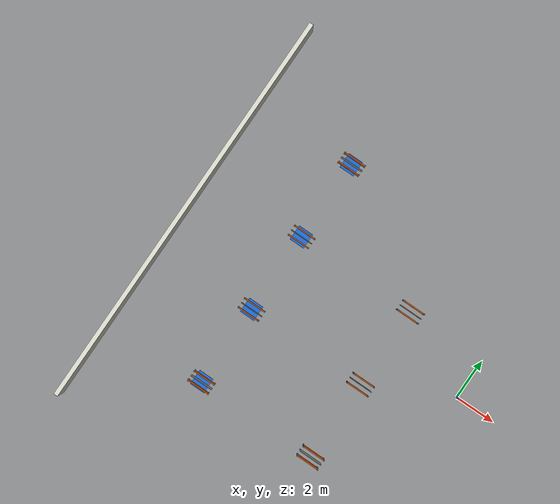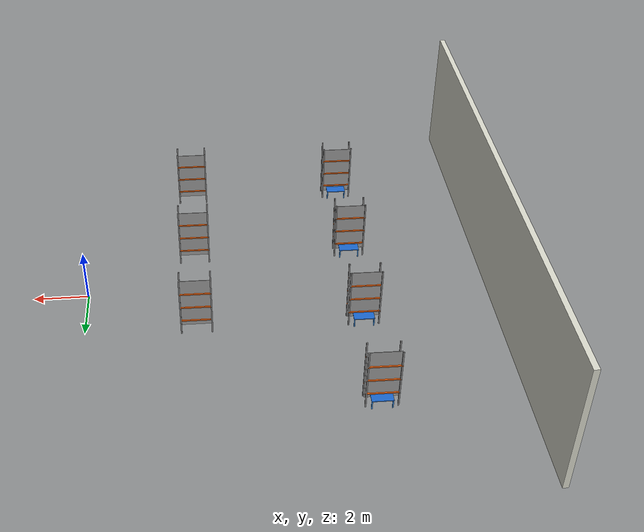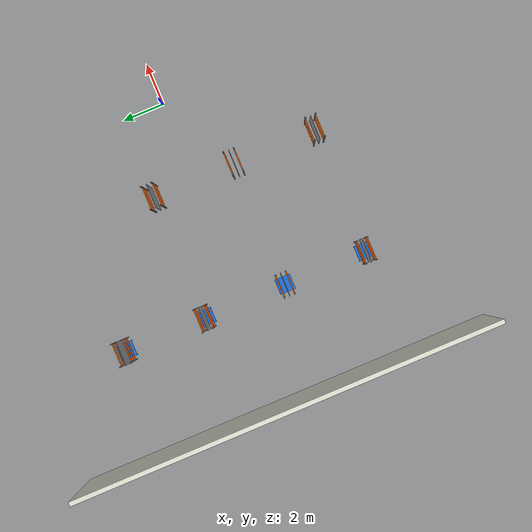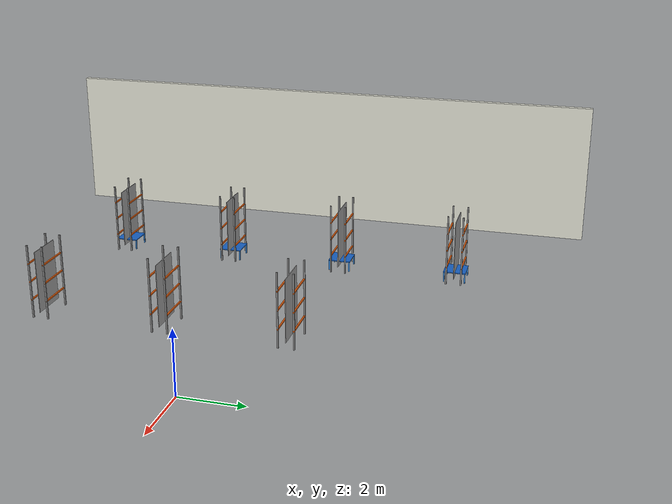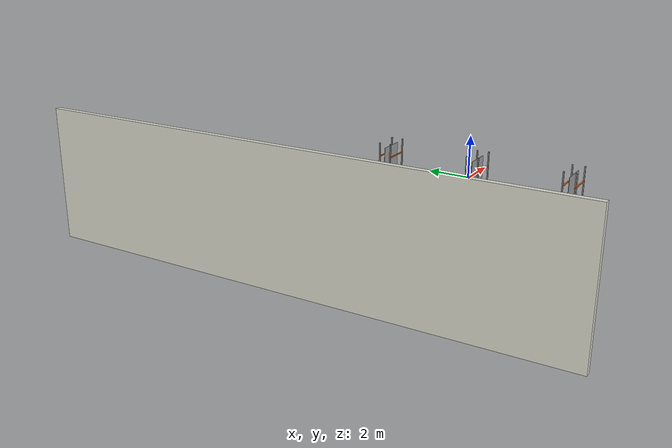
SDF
<sdf version="1.8">
 <world name="amr_world">
  <model name="wall_west">
   <static>true</static>
   <pose>-15 0 2.5 0 0 0</pose>
   <link name="link">
    <collision name="col"><geometry><box><size>0.2 20 5</size></box></geometry></collision>
    <visual name="vis">
     <geometry><box><size>0.2 20 5</size></box></geometry>
     <material><ambient>0.85 0.85 0.80 1</ambient><diffuse>0.85 0.85 0.80 1</diffuse></material>
    </visual>
   </link>
  </model>
  <model name="rack_1_1">
   <static>true</static>
   <pose>-10 -6 0 0 0 0</pose>
   <link name="link">
    <visual name="p1">
     <pose>0.55 0.25 1.2 0 0 0</pose>
     <geometry><box><size>0.05 0.05 2.4</size></box></geometry>
     <material><ambient>0.4 0.4 0.4 1</ambient><diffuse>0.5 0.5 0.5 1</diffuse></material>
    </visual>
    <collision name="p1c">
     <pose>0.55 0.25 1.2 0 0 0</pose>
     <geometry><box><size>0.05 0.05 2.4</size></box></geometry>
    </collision>
    <visual name="p2">
     <pose>0.55 -0.25 1.2 0 0 0</pose>
     <geometry><box><size>0.05 0.05 2.4</size></box></geometry>
     <material><ambient>0.4 0.4 0.4 1</ambient><diffuse>0.5 0.5 0.5 1</diffuse></material>
    </visual>
    <collision name="p2c">
     <pose>0.55 -0.25 1.2 0 0 0</pose>
     <geometry><box><size>0.05 0.05 2.4</size></box></geometry>
    </collision>
    <visual name="p3">
     <pose>-0.55 0.25 1.2 0 0 0</pose>
     <geometry><box><size>0.05 0.05 2.4</size></box></geometry>
     <material><ambient>0.4 0.4 0.4 1</ambient><diffuse>0.5 0.5 0.5 1</diffuse></material>
    </visual>
    <collision name="p3c">
     <pose>-0.55 0.25 1.2 0 0 0</pose>
     <geometry><box><size>0.05 0.05 2.4</size></box></geometry>
    </collision>
    <visual name="p4">
     <pose>-0.55 -0.25 1.2 0 0 0</pose>
     <geometry><box><size>0.05 0.05 2.4</size></box></geometry>
     <material><ambient>0.4 0.4 0.4 1</ambient><diffuse>0.5 0.5 0.5 1</diffuse></material>
    </visual>
    <collision name="p4c">
     <pose>-0.55 -0.25 1.2 0 0 0</pose>
     <geometry><box><size>0.05 0.05 2.4</size></box></geometry>
    </collision>
    <visual name="b1l">
     <pose>0 0.25 0.60 0 0 0</pose>
     <geometry><box><size>1.15 0.05 0.04</size></box></geometry>
     <material><ambient>0.85 0.35 0.05 1</ambient><diffuse>0.85 0.35 0.05 1</diffuse></material>
    </visual>
    <collision name="b1lc">
     <pose>0 0.25 0.60 0 0 0</pose>
     <geometry><box><size>1.15 0.05 0.04</size></box></geometry>
    </collision>
    <visual name="b1r">
     <pose>0 -0.25 0.60 0 0 0</pose>
     <geometry><box><size>1.15 0.05 0.04</size></box></geometry>
     <material><ambient>0.85 0.35 0.05 1</ambient><diffuse>0.85 0.35 0.05 1</diffuse></material>
    </visual>
    <collision name="b1rc">
     <pose>0 -0.25 0.60 0 0 0</pose>
     <geometry><box><size>1.15 0.05 0.04</size></box></geometry>
    </collision>
    <visual name="b2l">
     <pose>0 0.25 1.20 0 0 0</pose>
     <geometry><box><size>1.15 0.05 0.04</size></box></geometry>
     <material><ambient>0.85 0.35 0.05 1</ambient><diffuse>0.85 0.35 0.05 1</diffuse></material>
    </visual>
    <collision name="b2lc">
     <pose>0 0.25 1.20 0 0 0</pose>
     <geometry><box><size>1.15 0.05 0.04</size></box></geometry>
    </collision>
    <visual name="b2r">
     <pose>0 -0.25 1.20 0 0 0</pose>
     <geometry><box><size>1.15 0.05 0.04</size></box></geometry>
     <material><ambient>0.85 0.35 0.05 1</ambient><diffuse>0.85 0.35 0.05 1</diffuse></material>
    </visual>
    <collision name="b2rc">
     <pose>0 -0.25 1.20 0 0 0</pose>
     <geometry><box><size>1.15 0.05 0.04</size></box></geometry>
    </collision>
    <visual name="b3l">
     <pose>0 0.25 1.80 0 0 0</pose>
     <geometry><box><size>1.15 0.05 0.04</size></box></geometry>
     <material><ambient>0.85 0.35 0.05 1</ambient><diffuse>0.85 0.35 0.05 1</diffuse></material>
    </visual>
    <collision name="b3lc">
     <pose>0 0.25 1.80 0 0 0</pose>
     <geometry><box><size>1.15 0.05 0.04</size></box></geometry>
    </collision>
    <visual name="b3r">
     <pose>0 -0.25 1.80 0 0 0</pose>
     <geometry><box><size>1.15 0.05 0.04</size></box></geometry>
     <material><ambient>0.85 0.35 0.05 1</ambient><diffuse>0.85 0.35 0.05 1</diffuse></material>
    </visual>
    <collision name="b3rc">
     <pose>0 -0.25 1.80 0 0 0</pose>
     <geometry><box><size>1.15 0.05 0.04</size></box></geometry>
    </collision>
    <visual name="brace">
     <pose>0 0 1.2 0 0 0</pose>
     <geometry><box><size>1.15 0.02 2.0</size></box></geometry>
     <material><ambient>0.6 0.6 0.6 1</ambient><diffuse>0.6 0.6 0.6 1</diffuse></material>
    </visual>
   </link>
  </model>
  <model name="rack_1_2">
   <static>true</static>
   <pose>-10 -2 0 0 0 0</pose>
   <link name="link">
    <visual name="p1">
     <pose>0.55 0.25 1.2 0 0 0</pose>
     <geometry><box><size>0.05 0.05 2.4</size></box></geometry>
     <material><ambient>0.4 0.4 0.4 1</ambient><diffuse>0.5 0.5 0.5 1</diffuse></material>
    </visual>
    <collision name="p1c">
     <pose>0.55 0.25 1.2 0 0 0</pose>
     <geometry><box><size>0.05 0.05 2.4</size></box></geometry>
    </collision>
    <visual name="p2">
     <pose>0.55 -0.25 1.2 0 0 0</pose>
     <geometry><box><size>0.05 0.05 2.4</size></box></geometry>
     <material><ambient>0.4 0.4 0.4 1</ambient><diffuse>0.5 0.5 0.5 1</diffuse></material>
    </visual>
    <collision name="p2c">
     <pose>0.55 -0.25 1.2 0 0 0</pose>
     <geometry><box><size>0.05 0.05 2.4</size></box></geometry>
    </collision>
    <visual name="p3">
     <pose>-0.55 0.25 1.2 0 0 0</pose>
     <geometry><box><size>0.05 0.05 2.4</size></box></geometry>
     <material><ambient>0.4 0.4 0.4 1</ambient><diffuse>0.5 0.5 0.5 1</diffuse></material>
    </visual>
    <collision name="p3c">
     <pose>-0.55 0.25 1.2 0 0 0</pose>
     <geometry><box><size>0.05 0.05 2.4</size></box></geometry>
    </collision>
    <visual name="p4">
     <pose>-0.55 -0.25 1.2 0 0 0</pose>
     <geometry><box><size>0.05 0.05 2.4</size></box></geometry>
     <material><ambient>0.4 0.4 0.4 1</ambient><diffuse>0.5 0.5 0.5 1</diffuse></material>
    </visual>
    <collision name="p4c">
     <pose>-0.55 -0.25 1.2 0 0 0</pose>
     <geometry><box><size>0.05 0.05 2.4</size></box></geometry>
    </collision>
    <visual name="b1l">
     <pose>0 0.25 0.60 0 0 0</pose>
     <geometry><box><size>1.15 0.05 0.04</size></box></geometry>
     <material><ambient>0.85 0.35 0.05 1</ambient><diffuse>0.85 0.35 0.05 1</diffuse></material>
    </visual>
    <collision name="b1lc">
     <pose>0 0.25 0.60 0 0 0</pose>
     <geometry><box><size>1.15 0.05 0.04</size></box></geometry>
    </collision>
    <visual name="b1r">
     <pose>0 -0.25 0.60 0 0 0</pose>
     <geometry><box><size>1.15 0.05 0.04</size></box></geometry>
     <material><ambient>0.85 0.35 0.05 1</ambient><diffuse>0.85 0.35 0.05 1</diffuse></material>
    </visual>
    <collision name="b1rc">
     <pose>0 -0.25 0.60 0 0 0</pose>
     <geometry><box><size>1.15 0.05 0.04</size></box></geometry>
    </collision>
    <visual name="b2l">
     <pose>0 0.25 1.20 0 0 0</pose>
     <geometry><box><size>1.15 0.05 0.04</size></box></geometry>
     <material><ambient>0.85 0.35 0.05 1</ambient><diffuse>0.85 0.35 0.05 1</diffuse></material>
    </visual>
    <collision name="b2lc">
     <pose>0 0.25 1.20 0 0 0</pose>
     <geometry><box><size>1.15 0.05 0.04</size></box></geometry>
    </collision>
    <visual name="b2r">
     <pose>0 -0.25 1.20 0 0 0</pose>
     <geometry><box><size>1.15 0.05 0.04</size></box></geometry>
     <material><ambient>0.85 0.35 0.05 1</ambient><diffuse>0.85 0.35 0.05 1</diffuse></material>
    </visual>
    <collision name="b2rc">
     <pose>0 -0.25 1.20 0 0 0</pose>
     <geometry><box><size>1.15 0.05 0.04</size></box></geometry>
    </collision>
    <visual name="b3l">
     <pose>0 0.25 1.80 0 0 0</pose>
     <geometry><box><size>1.15 0.05 0.04</size></box></geometry>
     <material><ambient>0.85 0.35 0.05 1</ambient><diffuse>0.85 0.35 0.05 1</diffuse></material>
    </visual>
    <collision name="b3lc">
     <pose>0 0.25 1.80 0 0 0</pose>
     <geometry><box><size>1.15 0.05 0.04</size></box></geometry>
    </collision>
    <visual name="b3r">
     <pose>0 -0.25 1.80 0 0 0</pose>
     <geometry><box><size>1.15 0.05 0.04</size></box></geometry>
     <material><ambient>0.85 0.35 0.05 1</ambient><diffuse>0.85 0.35 0.05 1</diffuse></material>
    </visual>
    <collision name="b3rc">
     <pose>0 -0.25 1.80 0 0 0</pose>
     <geometry><box><size>1.15 0.05 0.04</size></box></geometry>
    </collision>
    <visual name="brace">
     <pose>0 0 1.2 0 0 0</pose>
     <geometry><box><size>1.15 0.02 2.0</size></box></geometry>
     <material><ambient>0.6 0.6 0.6 1</ambient><diffuse>0.6 0.6 0.6 1</diffuse></material>
    </visual>
   </link>
  </model>
  <model name="rack_1_3">
   <static>true</static>
   <pose>-10 2 0 0 0 0</pose>
   <link name="link">
    <visual name="p1">
     <pose>0.55 0.25 1.2 0 0 0</pose>
     <geometry><box><size>0.05 0.05 2.4</size></box></geometry>
     <material><ambient>0.4 0.4 0.4 1</ambient><diffuse>0.5 0.5 0.5 1</diffuse></material>
    </visual>
    <collision name="p1c">
     <pose>0.55 0.25 1.2 0 0 0</pose>
     <geometry><box><size>0.05 0.05 2.4</size></box></geometry>
    </collision>
    <visual name="p2">
     <pose>0.55 -0.25 1.2 0 0 0</pose>
     <geometry><box><size>0.05 0.05 2.4</size></box></geometry>
     <material><ambient>0.4 0.4 0.4 1</ambient><diffuse>0.5 0.5 0.5 1</diffuse></material>
    </visual>
    <collision name="p2c">
     <pose>0.55 -0.25 1.2 0 0 0</pose>
     <geometry><box><size>0.05 0.05 2.4</size></box></geometry>
    </collision>
    <visual name="p3">
     <pose>-0.55 0.25 1.2 0 0 0</pose>
     <geometry><box><size>0.05 0.05 2.4</size></box></geometry>
     <material><ambient>0.4 0.4 0.4 1</ambient><diffuse>0.5 0.5 0.5 1</diffuse></material>
    </visual>
    <collision name="p3c">
     <pose>-0.55 0.25 1.2 0 0 0</pose>
     <geometry><box><size>0.05 0.05 2.4</size></box></geometry>
    </collision>
    <visual name="p4">
     <pose>-0.55 -0.25 1.2 0 0 0</pose>
     <geometry><box><size>0.05 0.05 2.4</size></box></geometry>
     <material><ambient>0.4 0.4 0.4 1</ambient><diffuse>0.5 0.5 0.5 1</diffuse></material>
    </visual>
    <collision name="p4c">
     <pose>-0.55 -0.25 1.2 0 0 0</pose>
     <geometry><box><size>0.05 0.05 2.4</size></box></geometry>
    </collision>
    <visual name="b1l">
     <pose>0 0.25 0.60 0 0 0</pose>
     <geometry><box><size>1.15 0.05 0.04</size></box></geometry>
     <material><ambient>0.85 0.35 0.05 1</ambient><diffuse>0.85 0.35 0.05 1</diffuse></material>
    </visual>
    <collision name="b1lc">
     <pose>0 0.25 0.60 0 0 0</pose>
     <geometry><box><size>1.15 0.05 0.04</size></box></geometry>
    </collision>
    <visual name="b1r">
     <pose>0 -0.25 0.60 0 0 0</pose>
     <geometry><box><size>1.15 0.05 0.04</size></box></geometry>
     <material><ambient>0.85 0.35 0.05 1</ambient><diffuse>0.85 0.35 0.05 1</diffuse></material>
    </visual>
    <collision name="b1rc">
     <pose>0 -0.25 0.60 0 0 0</pose>
     <geometry><box><size>1.15 0.05 0.04</size></box></geometry>
    </collision>
    <visual name="b2l">
     <pose>0 0.25 1.20 0 0 0</pose>
     <geometry><box><size>1.15 0.05 0.04</size></box></geometry>
     <material><ambient>0.85 0.35 0.05 1</ambient><diffuse>0.85 0.35 0.05 1</diffuse></material>
    </visual>
    <collision name="b2lc">
     <pose>0 0.25 1.20 0 0 0</pose>
     <geometry><box><size>1.15 0.05 0.04</size></box></geometry>
    </collision>
    <visual name="b2r">
     <pose>0 -0.25 1.20 0 0 0</pose>
     <geometry><box><size>1.15 0.05 0.04</size></box></geometry>
     <material><ambient>0.85 0.35 0.05 1</ambient><diffuse>0.85 0.35 0.05 1</diffuse></material>
    </visual>
    <collision name="b2rc">
     <pose>0 -0.25 1.20 0 0 0</pose>
     <geometry><box><size>1.15 0.05 0.04</size></box></geometry>
    </collision>
    <visual name="b3l">
     <pose>0 0.25 1.80 0 0 0</pose>
     <geometry><box><size>1.15 0.05 0.04</size></box></geometry>
     <material><ambient>0.85 0.35 0.05 1</ambient><diffuse>0.85 0.35 0.05 1</diffuse></material>
    </visual>
    <collision name="b3lc">
     <pose>0 0.25 1.80 0 0 0</pose>
     <geometry><box><size>1.15 0.05 0.04</size></box></geometry>
    </collision>
    <visual name="b3r">
     <pose>0 -0.25 1.80 0 0 0</pose>
     <geometry><box><size>1.15 0.05 0.04</size></box></geometry>
     <material><ambient>0.85 0.35 0.05 1</ambient><diffuse>0.85 0.35 0.05 1</diffuse></material>
    </visual>
    <collision name="b3rc">
     <pose>0 -0.25 1.80 0 0 0</pose>
     <geometry><box><size>1.15 0.05 0.04</size></box></geometry>
    </collision>
    <visual name="brace">
     <pose>0 0 1.2 0 0 0</pose>
     <geometry><box><size>1.15 0.02 2.0</size></box></geometry>
     <material><ambient>0.6 0.6 0.6 1</ambient><diffuse>0.6 0.6 0.6 1</diffuse></material>
    </visual>
   </link>
  </model>
  <model name="rack_1_4">
   <static>true</static>
   <pose>-10 6 0 0 0 0</pose>
   <link name="link">
    <visual name="p1">
     <pose>0.55 0.25 1.2 0 0 0</pose>
     <geometry><box><size>0.05 0.05 2.4</size></box></geometry>
     <material><ambient>0.4 0.4 0.4 1</ambient><diffuse>0.5 0.5 0.5 1</diffuse></material>
    </visual>
    <collision name="p1c">
     <pose>0.55 0.25 1.2 0 0 0</pose>
     <geometry><box><size>0.05 0.05 2.4</size></box></geometry>
    </collision>
    <visual name="p2">
     <pose>0.55 -0.25 1.2 0 0 0</pose>
     <geometry><box><size>0.05 0.05 2.4</size></box></geometry>
     <material><ambient>0.4 0.4 0.4 1</ambient><diffuse>0.5 0.5 0.5 1</diffuse></material>
    </visual>
    <collision name="p2c">
     <pose>0.55 -0.25 1.2 0 0 0</pose>
     <geometry><box><size>0.05 0.05 2.4</size></box></geometry>
    </collision>
    <visual name="p3">
     <pose>-0.55 0.25 1.2 0 0 0</pose>
     <geometry><box><size>0.05 0.05 2.4</size></box></geometry>
     <material><ambient>0.4 0.4 0.4 1</ambient><diffuse>0.5 0.5 0.5 1</diffuse></material>
    </visual>
    <collision name="p3c">
     <pose>-0.55 0.25 1.2 0 0 0</pose>
     <geometry><box><size>0.05 0.05 2.4</size></box></geometry>
    </collision>
    <visual name="p4">
     <pose>-0.55 -0.25 1.2 0 0 0</pose>
     <geometry><box><size>0.05 0.05 2.4</size></box></geometry>
     <material><ambient>0.4 0.4 0.4 1</ambient><diffuse>0.5 0.5 0.5 1</diffuse></material>
    </visual>
    <collision name="p4c">
     <pose>-0.55 -0.25 1.2 0 0 0</pose>
     <geometry><box><size>0.05 0.05 2.4</size></box></geometry>
    </collision>
    <visual name="b1l">
     <pose>0 0.25 0.60 0 0 0</pose>
     <geometry><box><size>1.15 0.05 0.04</size></box></geometry>
     <material><ambient>0.85 0.35 0.05 1</ambient><diffuse>0.85 0.35 0.05 1</diffuse></material>
    </visual>
    <collision name="b1lc">
     <pose>0 0.25 0.60 0 0 0</pose>
     <geometry><box><size>1.15 0.05 0.04</size></box></geometry>
    </collision>
    <visual name="b1r">
     <pose>0 -0.25 0.60 0 0 0</pose>
     <geometry><box><size>1.15 0.05 0.04</size></box></geometry>
     <material><ambient>0.85 0.35 0.05 1</ambient><diffuse>0.85 0.35 0.05 1</diffuse></material>
    </visual>
    <collision name="b1rc">
     <pose>0 -0.25 0.60 0 0 0</pose>
     <geometry><box><size>1.15 0.05 0.04</size></box></geometry>
    </collision>
    <visual name="b2l">
     <pose>0 0.25 1.20 0 0 0</pose>
     <geometry><box><size>1.15 0.05 0.04</size></box></geometry>
     <material><ambient>0.85 0.35 0.05 1</ambient><diffuse>0.85 0.35 0.05 1</diffuse></material>
    </visual>
    <collision name="b2lc">
     <pose>0 0.25 1.20 0 0 0</pose>
     <geometry><box><size>1.15 0.05 0.04</size></box></geometry>
    </collision>
    <visual name="b2r">
     <pose>0 -0.25 1.20 0 0 0</pose>
     <geometry><box><size>1.15 0.05 0.04</size></box></geometry>
     <material><ambient>0.85 0.35 0.05 1</ambient><diffuse>0.85 0.35 0.05 1</diffuse></material>
    </visual>
    <collision name="b2rc">
     <pose>0 -0.25 1.20 0 0 0</pose>
     <geometry><box><size>1.15 0.05 0.04</size></box></geometry>
    </collision>
    <visual name="b3l">
     <pose>0 0.25 1.80 0 0 0</pose>
     <geometry><box><size>1.15 0.05 0.04</size></box></geometry>
     <material><ambient>0.85 0.35 0.05 1</ambient><diffuse>0.85 0.35 0.05 1</diffuse></material>
    </visual>
    <collision name="b3lc">
     <pose>0 0.25 1.80 0 0 0</pose>
     <geometry><box><size>1.15 0.05 0.04</size></box></geometry>
    </collision>
    <visual name="b3r">
     <pose>0 -0.25 1.80 0 0 0</pose>
     <geometry><box><size>1.15 0.05 0.04</size></box></geometry>
     <material><ambient>0.85 0.35 0.05 1</ambient><diffuse>0.85 0.35 0.05 1</diffuse></material>
    </visual>
    <collision name="b3rc">
     <pose>0 -0.25 1.80 0 0 0</pose>
     <geometry><box><size>1.15 0.05 0.04</size></box></geometry>
    </collision>
    <visual name="brace">
     <pose>0 0 1.2 0 0 0</pose>
     <geometry><box><size>1.15 0.02 2.0</size></box></geometry>
     <material><ambient>0.6 0.6 0.6 1</ambient><diffuse>0.6 0.6 0.6 1</diffuse></material>
    </visual>
   </link>
  </model>
  <model name="rack_2_1">
   <static>true</static>
   <pose>-4 -6 0 0 0 0</pose>
   <link name="link">
    <visual name="p1">
     <pose>0.55 0.25 1.2 0 0 0</pose>
     <geometry><box><size>0.05 0.05 2.4</size></box></geometry>
     <material><ambient>0.4 0.4 0.4 1</ambient><diffuse>0.5 0.5 0.5 1</diffuse></material>
    </visual>
    <collision name="p1c">
     <pose>0.55 0.25 1.2 0 0 0</pose>
     <geometry><box><size>0.05 0.05 2.4</size></box></geometry>
    </collision>
    <visual name="p2">
     <pose>0.55 -0.25 1.2 0 0 0</pose>
     <geometry><box><size>0.05 0.05 2.4</size></box></geometry>
     <material><ambient>0.4 0.4 0.4 1</ambient><diffuse>0.5 0.5 0.5 1</diffuse></material>
    </visual>
    <collision name="p2c">
     <pose>0.55 -0.25 1.2 0 0 0</pose>
     <geometry><box><size>0.05 0.05 2.4</size></box></geometry>
    </collision>
    <visual name="p3">
     <pose>-0.55 0.25 1.2 0 0 0</pose>
     <geometry><box><size>0.05 0.05 2.4</size></box></geometry>
     <material><ambient>0.4 0.4 0.4 1</ambient><diffuse>0.5 0.5 0.5 1</diffuse></material>
    </visual>
    <collision name="p3c">
     <pose>-0.55 0.25 1.2 0 0 0</pose>
     <geometry><box><size>0.05 0.05 2.4</size></box></geometry>
    </collision>
    <visual name="p4">
     <pose>-0.55 -0.25 1.2 0 0 0</pose>
     <geometry><box><size>0.05 0.05 2.4</size></box></geometry>
     <material><ambient>0.4 0.4 0.4 1</ambient><diffuse>0.5 0.5 0.5 1</diffuse></material>
    </visual>
    <collision name="p4c">
     <pose>-0.55 -0.25 1.2 0 0 0</pose>
     <geometry><box><size>0.05 0.05 2.4</size></box></geometry>
    </collision>
    <visual name="b1l">
     <pose>0 0.25 0.60 0 0 0</pose>
     <geometry><box><size>1.15 0.05 0.04</size></box></geometry>
     <material><ambient>0.85 0.35 0.05 1</ambient><diffuse>0.85 0.35 0.05 1</diffuse></material>
    </visual>
    <collision name="b1lc">
     <pose>0 0.25 0.60 0 0 0</pose>
     <geometry><box><size>1.15 0.05 0.04</size></box></geometry>
    </collision>
    <visual name="b1r">
     <pose>0 -0.25 0.60 0 0 0</pose>
     <geometry><box><size>1.15 0.05 0.04</size></box></geometry>
     <material><ambient>0.85 0.35 0.05 1</ambient><diffuse>0.85 0.35 0.05 1</diffuse></material>
    </visual>
    <collision name="b1rc">
     <pose>0 -0.25 0.60 0 0 0</pose>
     <geometry><box><size>1.15 0.05 0.04</size></box></geometry>
    </collision>
    <visual name="b2l">
     <pose>0 0.25 1.20 0 0 0</pose>
     <geometry><box><size>1.15 0.05 0.04</size></box></geometry>
     <material><ambient>0.85 0.35 0.05 1</ambient><diffuse>0.85 0.35 0.05 1</diffuse></material>
    </visual>
    <collision name="b2lc">
     <pose>0 0.25 1.20 0 0 0</pose>
     <geometry><box><size>1.15 0.05 0.04</size></box></geometry>
    </collision>
    <visual name="b2r">
     <pose>0 -0.25 1.20 0 0 0</pose>
     <geometry><box><size>1.15 0.05 0.04</size></box></geometry>
     <material><ambient>0.85 0.35 0.05 1</ambient><diffuse>0.85 0.35 0.05 1</diffuse></material>
    </visual>
    <collision name="b2rc">
     <pose>0 -0.25 1.20 0 0 0</pose>
     <geometry><box><size>1.15 0.05 0.04</size></box></geometry>
    </collision>
    <visual name="b3l">
     <pose>0 0.25 1.80 0 0 0</pose>
     <geometry><box><size>1.15 0.05 0.04</size></box></geometry>
     <material><ambient>0.85 0.35 0.05 1</ambient><diffuse>0.85 0.35 0.05 1</diffuse></material>
    </visual>
    <collision name="b3lc">
     <pose>0 0.25 1.80 0 0 0</pose>
     <geometry><box><size>1.15 0.05 0.04</size></box></geometry>
    </collision>
    <visual name="b3r">
     <pose>0 -0.25 1.80 0 0 0</pose>
     <geometry><box><size>1.15 0.05 0.04</size></box></geometry>
     <material><ambient>0.85 0.35 0.05 1</ambient><diffuse>0.85 0.35 0.05 1</diffuse></material>
    </visual>
    <collision name="b3rc">
     <pose>0 -0.25 1.80 0 0 0</pose>
     <geometry><box><size>1.15 0.05 0.04</size></box></geometry>
    </collision>
    <visual name="brace">
     <pose>0 0 1.2 0 0 0</pose>
     <geometry><box><size>1.15 0.02 2.0</size></box></geometry>
     <material><ambient>0.6 0.6 0.6 1</ambient><diffuse>0.6 0.6 0.6 1</diffuse></material>
    </visual>
   </link>
  </model>
  <model name="rack_2_2">
   <static>true</static>
   <pose>-4 -2 0 0 0 0</pose>
   <link name="link">
    <visual name="p1">
     <pose>0.55 0.25 1.2 0 0 0</pose>
     <geometry><box><size>0.05 0.05 2.4</size></box></geometry>
     <material><ambient>0.4 0.4 0.4 1</ambient><diffuse>0.5 0.5 0.5 1</diffuse></material>
    </visual>
    <collision name="p1c">
     <pose>0.55 0.25 1.2 0 0 0</pose>
     <geometry><box><size>0.05 0.05 2.4</size></box></geometry>
    </collision>
    <visual name="p2">
     <pose>0.55 -0.25 1.2 0 0 0</pose>
     <geometry><box><size>0.05 0.05 2.4</size></box></geometry>
     <material><ambient>0.4 0.4 0.4 1</ambient><diffuse>0.5 0.5 0.5 1</diffuse></material>
    </visual>
    <collision name="p2c">
     <pose>0.55 -0.25 1.2 0 0 0</pose>
     <geometry><box><size>0.05 0.05 2.4</size></box></geometry>
    </collision>
    <visual name="p3">
     <pose>-0.55 0.25 1.2 0 0 0</pose>
     <geometry><box><size>0.05 0.05 2.4</size></box></geometry>
     <material><ambient>0.4 0.4 0.4 1</ambient><diffuse>0.5 0.5 0.5 1</diffuse></material>
    </visual>
    <collision name="p3c">
     <pose>-0.55 0.25 1.2 0 0 0</pose>
     <geometry><box><size>0.05 0.05 2.4</size></box></geometry>
    </collision>
    <visual name="p4">
     <pose>-0.55 -0.25 1.2 0 0 0</pose>
     <geometry><box><size>0.05 0.05 2.4</size></box></geometry>
     <material><ambient>0.4 0.4 0.4 1</ambient><diffuse>0.5 0.5 0.5 1</diffuse></material>
    </visual>
    <collision name="p4c">
     <pose>-0.55 -0.25 1.2 0 0 0</pose>
     <geometry><box><size>0.05 0.05 2.4</size></box></geometry>
    </collision>
    <visual name="b1l">
     <pose>0 0.25 0.60 0 0 0</pose>
     <geometry><box><size>1.15 0.05 0.04</size></box></geometry>
     <material><ambient>0.85 0.35 0.05 1</ambient><diffuse>0.85 0.35 0.05 1</diffuse></material>
    </visual>
    <collision name="b1lc">
     <pose>0 0.25 0.60 0 0 0</pose>
     <geometry><box><size>1.15 0.05 0.04</size></box></geometry>
    </collision>
    <visual name="b1r">
     <pose>0 -0.25 0.60 0 0 0</pose>
     <geometry><box><size>1.15 0.05 0.04</size></box></geometry>
     <material><ambient>0.85 0.35 0.05 1</ambient><diffuse>0.85 0.35 0.05 1</diffuse></material>
    </visual>
    <collision name="b1rc">
     <pose>0 -0.25 0.60 0 0 0</pose>
     <geometry><box><size>1.15 0.05 0.04</size></box></geometry>
    </collision>
    <visual name="b2l">
     <pose>0 0.25 1.20 0 0 0</pose>
     <geometry><box><size>1.15 0.05 0.04</size></box></geometry>
     <material><ambient>0.85 0.35 0.05 1</ambient><diffuse>0.85 0.35 0.05 1</diffuse></material>
    </visual>
    <collision name="b2lc">
     <pose>0 0.25 1.20 0 0 0</pose>
     <geometry><box><size>1.15 0.05 0.04</size></box></geometry>
    </collision>
    <visual name="b2r">
     <pose>0 -0.25 1.20 0 0 0</pose>
     <geometry><box><size>1.15 0.05 0.04</size></box></geometry>
     <material><ambient>0.85 0.35 0.05 1</ambient><diffuse>0.85 0.35 0.05 1</diffuse></material>
    </visual>
    <collision name="b2rc">
     <pose>0 -0.25 1.20 0 0 0</pose>
     <geometry><box><size>1.15 0.05 0.04</size></box></geometry>
    </collision>
    <visual name="b3l">
     <pose>0 0.25 1.80 0 0 0</pose>
     <geometry><box><size>1.15 0.05 0.04</size></box></geometry>
     <material><ambient>0.85 0.35 0.05 1</ambient><diffuse>0.85 0.35 0.05 1</diffuse></material>
    </visual>
    <collision name="b3lc">
     <pose>0 0.25 1.80 0 0 0</pose>
     <geometry><box><size>1.15 0.05 0.04</size></box></geometry>
    </collision>
    <visual name="b3r">
     <pose>0 -0.25 1.80 0 0 0</pose>
     <geometry><box><size>1.15 0.05 0.04</size></box></geometry>
     <material><ambient>0.85 0.35 0.05 1</ambient><diffuse>0.85 0.35 0.05 1</diffuse></material>
    </visual>
    <collision name="b3rc">
     <pose>0 -0.25 1.80 0 0 0</pose>
     <geometry><box><size>1.15 0.05 0.04</size></box></geometry>
    </collision>
    <visual name="brace">
     <pose>0 0 1.2 0 0 0</pose>
     <geometry><box><size>1.15 0.02 2.0</size></box></geometry>
     <material><ambient>0.6 0.6 0.6 1</ambient><diffuse>0.6 0.6 0.6 1</diffuse></material>
    </visual>
   </link>
  </model>
  <model name="rack_2_3">
   <static>true</static>
   <pose>-4 2 0 0 0 0</pose>
   <link name="link">
    <visual name="p1">
     <pose>0.55 0.25 1.2 0 0 0</pose>
     <geometry><box><size>0.05 0.05 2.4</size></box></geometry>
     <material><ambient>0.4 0.4 0.4 1</ambient><diffuse>0.5 0.5 0.5 1</diffuse></material>
    </visual>
    <collision name="p1c">
     <pose>0.55 0.25 1.2 0 0 0</pose>
     <geometry><box><size>0.05 0.05 2.4</size></box></geometry>
    </collision>
    <visual name="p2">
     <pose>0.55 -0.25 1.2 0 0 0</pose>
     <geometry><box><size>0.05 0.05 2.4</size></box></geometry>
     <material><ambient>0.4 0.4 0.4 1</ambient><diffuse>0.5 0.5 0.5 1</diffuse></material>
    </visual>
    <collision name="p2c">
     <pose>0.55 -0.25 1.2 0 0 0</pose>
     <geometry><box><size>0.05 0.05 2.4</size></box></geometry>
    </collision>
    <visual name="p3">
     <pose>-0.55 0.25 1.2 0 0 0</pose>
     <geometry><box><size>0.05 0.05 2.4</size></box></geometry>
     <material><ambient>0.4 0.4 0.4 1</ambient><diffuse>0.5 0.5 0.5 1</diffuse></material>
    </visual>
    <collision name="p3c">
     <pose>-0.55 0.25 1.2 0 0 0</pose>
     <geometry><box><size>0.05 0.05 2.4</size></box></geometry>
    </collision>
    <visual name="p4">
     <pose>-0.55 -0.25 1.2 0 0 0</pose>
     <geometry><box><size>0.05 0.05 2.4</size></box></geometry>
     <material><ambient>0.4 0.4 0.4 1</ambient><diffuse>0.5 0.5 0.5 1</diffuse></material>
    </visual>
    <collision name="p4c">
     <pose>-0.55 -0.25 1.2 0 0 0</pose>
     <geometry><box><size>0.05 0.05 2.4</size></box></geometry>
    </collision>
    <visual name="b1l">
     <pose>0 0.25 0.60 0 0 0</pose>
     <geometry><box><size>1.15 0.05 0.04</size></box></geometry>
     <material><ambient>0.85 0.35 0.05 1</ambient><diffuse>0.85 0.35 0.05 1</diffuse></material>
    </visual>
    <collision name="b1lc">
     <pose>0 0.25 0.60 0 0 0</pose>
     <geometry><box><size>1.15 0.05 0.04</size></box></geometry>
    </collision>
    <visual name="b1r">
     <pose>0 -0.25 0.60 0 0 0</pose>
     <geometry><box><size>1.15 0.05 0.04</size></box></geometry>
     <material><ambient>0.85 0.35 0.05 1</ambient><diffuse>0.85 0.35 0.05 1</diffuse></material>
    </visual>
    <collision name="b1rc">
     <pose>0 -0.25 0.60 0 0 0</pose>
     <geometry><box><size>1.15 0.05 0.04</size></box></geometry>
    </collision>
    <visual name="b2l">
     <pose>0 0.25 1.20 0 0 0</pose>
     <geometry><box><size>1.15 0.05 0.04</size></box></geometry>
     <material><ambient>0.85 0.35 0.05 1</ambient><diffuse>0.85 0.35 0.05 1</diffuse></material>
    </visual>
    <collision name="b2lc">
     <pose>0 0.25 1.20 0 0 0</pose>
     <geometry><box><size>1.15 0.05 0.04</size></box></geometry>
    </collision>
    <visual name="b2r">
     <pose>0 -0.25 1.20 0 0 0</pose>
     <geometry><box><size>1.15 0.05 0.04</size></box></geometry>
     <material><ambient>0.85 0.35 0.05 1</ambient><diffuse>0.85 0.35 0.05 1</diffuse></material>
    </visual>
    <collision name="b2rc">
     <pose>0 -0.25 1.20 0 0 0</pose>
     <geometry><box><size>1.15 0.05 0.04</size></box></geometry>
    </collision>
    <visual name="b3l">
     <pose>0 0.25 1.80 0 0 0</pose>
     <geometry><box><size>1.15 0.05 0.04</size></box></geometry>
     <material><ambient>0.85 0.35 0.05 1</ambient><diffuse>0.85 0.35 0.05 1</diffuse></material>
    </visual>
    <collision name="b3lc">
     <pose>0 0.25 1.80 0 0 0</pose>
     <geometry><box><size>1.15 0.05 0.04</size></box></geometry>
    </collision>
    <visual name="b3r">
     <pose>0 -0.25 1.80 0 0 0</pose>
     <geometry><box><size>1.15 0.05 0.04</size></box></geometry>
     <material><ambient>0.85 0.35 0.05 1</ambient><diffuse>0.85 0.35 0.05 1</diffuse></material>
    </visual>
    <collision name="b3rc">
     <pose>0 -0.25 1.80 0 0 0</pose>
     <geometry><box><size>1.15 0.05 0.04</size></box></geometry>
    </collision>
    <visual name="brace">
     <pose>0 0 1.2 0 0 0</pose>
     <geometry><box><size>1.15 0.02 2.0</size></box></geometry>
     <material><ambient>0.6 0.6 0.6 1</ambient><diffuse>0.6 0.6 0.6 1</diffuse></material>
    </visual>
   </link>
  </model>
  <model name="pod_1">
   <static>false</static>
   <pose>-10 -6 0 0 0 0</pose>
   <link name="link">
    <collision name="lfl">
     <pose>0.35 0.35 0.165 0 0 0</pose>
     <geometry><box><size>0.04 0.04 0.33</size></box></geometry>
    </collision>
    <visual name="vfl">
     <pose>0.35 0.35 0.165 0 0 0</pose>
     <geometry><box><size>0.04 0.04 0.33</size></box></geometry>
     <material><ambient>0.2 0.5 0.8 1</ambient><diffuse>0.2 0.5 0.8 1</diffuse></material>
    </visual>
    <collision name="lfr">
     <pose>0.35 -0.35 0.165 0 0 0</pose>
     <geometry><box><size>0.04 0.04 0.33</size></box></geometry>
    </collision>
    <visual name="vfr">
     <pose>0.35 -0.35 0.165 0 0 0</pose>
     <geometry><box><size>0.04 0.04 0.33</size></box></geometry>
     <material><ambient>0.2 0.5 0.8 1</ambient><diffuse>0.2 0.5 0.8 1</diffuse></material>
    </visual>
    <collision name="lrl">
     <pose>-0.35 0.35 0.165 0 0 0</pose>
     <geometry><box><size>0.04 0.04 0.33</size></box></geometry>
    </collision>
    <visual name="vrl">
     <pose>-0.35 0.35 0.165 0 0 0</pose>
     <geometry><box><size>0.04 0.04 0.33</size></box></geometry>
     <material><ambient>0.2 0.5 0.8 1</ambient><diffuse>0.2 0.5 0.8 1</diffuse></material>
    </visual>
    <collision name="lrr">
     <pose>-0.35 -0.35 0.165 0 0 0</pose>
     <geometry><box><size>0.04 0.04 0.33</size></box></geometry>
    </collision>
    <visual name="vrr">
     <pose>-0.35 -0.35 0.165 0 0 0</pose>
     <geometry><box><size>0.04 0.04 0.33</size></box></geometry>
     <material><ambient>0.2 0.5 0.8 1</ambient><diffuse>0.2 0.5 0.8 1</diffuse></material>
    </visual>
    <collision name="top">
     <pose>0 0 0.345 0 0 0</pose>
     <geometry><box><size>0.75 0.75 0.03</size></box></geometry>
    </collision>
    <visual name="vtop">
     <pose>0 0 0.345 0 0 0</pose>
     <geometry><box><size>0.75 0.75 0.03</size></box></geometry>
     <material><ambient>0.1 0.4 0.8 1</ambient><diffuse>0.1 0.4 0.8 1</diffuse></material>
    </visual>
    <inertial>
     <mass>8.0</mass>
     <inertia><ixx>0.5</ixx><iyy>0.5</iyy><izz>0.5</izz><ixy>0</ixy><ixz>0</ixz><iyz>0</iyz></inertia>
    </inertial>
   </link>
  </model>
  <model name="pod_2">
   <static>false</static>
   <pose>-10 -2 0 0 0 0</pose>
   <link name="link">
    <collision name="lfl">
     <pose>0.35 0.35 0.165 0 0 0</pose>
     <geometry><box><size>0.04 0.04 0.33</size></box></geometry>
    </collision>
    <visual name="vfl">
     <pose>0.35 0.35 0.165 0 0 0</pose>
     <geometry><box><size>0.04 0.04 0.33</size></box></geometry>
     <material><ambient>0.2 0.5 0.8 1</ambient><diffuse>0.2 0.5 0.8 1</diffuse></material>
    </visual>
    <collision name="lfr">
     <pose>0.35 -0.35 0.165 0 0 0</pose>
     <geometry><box><size>0.04 0.04 0.33</size></box></geometry>
    </collision>
    <visual name="vfr">
     <pose>0.35 -0.35 0.165 0 0 0</pose>
     <geometry><box><size>0.04 0.04 0.33</size></box></geometry>
     <material><ambient>0.2 0.5 0.8 1</ambient><diffuse>0.2 0.5 0.8 1</diffuse></material>
    </visual>
    <collision name="lrl">
     <pose>-0.35 0.35 0.165 0 0 0</pose>
     <geometry><box><size>0.04 0.04 0.33</size></box></geometry>
    </collision>
    <visual name="vrl">
     <pose>-0.35 0.35 0.165 0 0 0</pose>
     <geometry><box><size>0.04 0.04 0.33</size></box></geometry>
     <material><ambient>0.2 0.5 0.8 1</ambient><diffuse>0.2 0.5 0.8 1</diffuse></material>
    </visual>
    <collision name="lrr">
     <pose>-0.35 -0.35 0.165 0 0 0</pose>
     <geometry><box><size>0.04 0.04 0.33</size></box></geometry>
    </collision>
    <visual name="vrr">
     <pose>-0.35 -0.35 0.165 0 0 0</pose>
     <geometry><box><size>0.04 0.04 0.33</size></box></geometry>
     <material><ambient>0.2 0.5 0.8 1</ambient><diffuse>0.2 0.5 0.8 1</diffuse></material>
    </visual>
    <collision name="top">
     <pose>0 0 0.345 0 0 0</pose>
     <geometry><box><size>0.75 0.75 0.03</size></box></geometry>
    </collision>
    <visual name="vtop">
     <pose>0 0 0.345 0 0 0</pose>
     <geometry><box><size>0.75 0.75 0.03</size></box></geometry>
     <material><ambient>0.1 0.4 0.8 1</ambient><diffuse>0.1 0.4 0.8 1</diffuse></material>
    </visual>
    <inertial>
     <mass>8.0</mass>
     <inertia><ixx>0.5</ixx><iyy>0.5</iyy><izz>0.5</izz><ixy>0</ixy><ixz>0</ixz><iyz>0</iyz></inertia>
    </inertial>
   </link>
  </model>
  <model name="pod_3">
   <static>false</static>
   <pose>-10 2 0 0 0 0</pose>
   <link name="link">
    <collision name="lfl">
     <pose>0.35 0.35 0.165 0 0 0</pose>
     <geometry><box><size>0.04 0.04 0.33</size></box></geometry>
    </collision>
    <visual name="vfl">
     <pose>0.35 0.35 0.165 0 0 0</pose>
     <geometry><box><size>0.04 0.04 0.33</size></box></geometry>
     <material><ambient>0.2 0.5 0.8 1</ambient><diffuse>0.2 0.5 0.8 1</diffuse></material>
    </visual>
    <collision name="lfr">
     <pose>0.35 -0.35 0.165 0 0 0</pose>
     <geometry><box><size>0.04 0.04 0.33</size></box></geometry>
    </collision>
    <visual name="vfr">
     <pose>0.35 -0.35 0.165 0 0 0</pose>
     <geometry><box><size>0.04 0.04 0.33</size></box></geometry>
     <material><ambient>0.2 0.5 0.8 1</ambient><diffuse>0.2 0.5 0.8 1</diffuse></material>
    </visual>
    <collision name="lrl">
     <pose>-0.35 0.35 0.165 0 0 0</pose>
     <geometry><box><size>0.04 0.04 0.33</size></box></geometry>
    </collision>
    <visual name="vrl">
     <pose>-0.35 0.35 0.165 0 0 0</pose>
     <geometry><box><size>0.04 0.04 0.33</size></box></geometry>
     <material><ambient>0.2 0.5 0.8 1</ambient><diffuse>0.2 0.5 0.8 1</diffuse></material>
    </visual>
    <collision name="lrr">
     <pose>-0.35 -0.35 0.165 0 0 0</pose>
     <geometry><box><size>0.04 0.04 0.33</size></box></geometry>
    </collision>
    <visual name="vrr">
     <pose>-0.35 -0.35 0.165 0 0 0</pose>
     <geometry><box><size>0.04 0.04 0.33</size></box></geometry>
     <material><ambient>0.2 0.5 0.8 1</ambient><diffuse>0.2 0.5 0.8 1</diffuse></material>
    </visual>
    <collision name="top">
     <pose>0 0 0.345 0 0 0</pose>
     <geometry><box><size>0.75 0.75 0.03</size></box></geometry>
    </collision>
    <visual name="vtop">
     <pose>0 0 0.345 0 0 0</pose>
     <geometry><box><size>0.75 0.75 0.03</size></box></geometry>
     <material><ambient>0.1 0.4 0.8 1</ambient><diffuse>0.1 0.4 0.8 1</diffuse></material>
    </visual>
    <inertial>
     <mass>8.0</mass>
     <inertia><ixx>0.5</ixx><iyy>0.5</iyy><izz>0.5</izz><ixy>0</ixy><ixz>0</ixz><iyz>0</iyz></inertia>
    </inertial>
   </link>
  </model>
  <model name="pod_4">
   <static>false</static>
   <pose>-10 6 0 0 0 0</pose>
   <link name="link">
    <collision name="lfl">
     <pose>0.35 0.35 0.165 0 0 0</pose>
     <geometry><box><size>0.04 0.04 0.33</size></box></geometry>
    </collision>
    <visual name="vfl">
     <pose>0.35 0.35 0.165 0 0 0</pose>
     <geometry><box><size>0.04 0.04 0.33</size></box></geometry>
     <material><ambient>0.2 0.5 0.8 1</ambient><diffuse>0.2 0.5 0.8 1</diffuse></material>
    </visual>
    <collision name="lfr">
     <pose>0.35 -0.35 0.165 0 0 0</pose>
     <geometry><box><size>0.04 0.04 0.33</size></box></geometry>
    </collision>
    <visual name="vfr">
     <pose>0.35 -0.35 0.165 0 0 0</pose>
     <geometry><box><size>0.04 0.04 0.33</size></box></geometry>
     <material><ambient>0.2 0.5 0.8 1</ambient><diffuse>0.2 0.5 0.8 1</diffuse></material>
    </visual>
    <collision name="lrl">
     <pose>-0.35 0.35 0.165 0 0 0</pose>
     <geometry><box><size>0.04 0.04 0.33</size></box></geometry>
    </collision>
    <visual name="vrl">
     <pose>-0.35 0.35 0.165 0 0 0</pose>
     <geometry><box><size>0.04 0.04 0.33</size></box></geometry>
     <material><ambient>0.2 0.5 0.8 1</ambient><diffuse>0.2 0.5 0.8 1</diffuse></material>
    </visual>
    <collision name="lrr">
     <pose>-0.35 -0.35 0.165 0 0 0</pose>
     <geometry><box><size>0.04 0.04 0.33</size></box></geometry>
    </collision>
    <visual name="vrr">
     <pose>-0.35 -0.35 0.165 0 0 0</pose>
     <geometry><box><size>0.04 0.04 0.33</size></box></geometry>
     <material><ambient>0.2 0.5 0.8 1</ambient><diffuse>0.2 0.5 0.8 1</diffuse></material>
    </visual>
    <collision name="top">
     <pose>0 0 0.345 0 0 0</pose>
     <geometry><box><size>0.75 0.75 0.03</size></box></geometry>
    </collision>
    <visual name="vtop">
     <pose>0 0 0.345 0 0 0</pose>
     <geometry><box><size>0.75 0.75 0.03</size></box></geometry>
     <material><ambient>0.1 0.4 0.8 1</ambient><diffuse>0.1 0.4 0.8 1</diffuse></material>
    </visual>
    <inertial>
     <mass>8.0</mass>
     <inertia><ixx>0.5</ixx><iyy>0.5</iyy><izz>0.5</izz><ixy>0</ixy><ixz>0</ixz><iyz>0</iyz></inertia>
    </inertial>
   </link>
  </model>
 </world>
</sdf>
